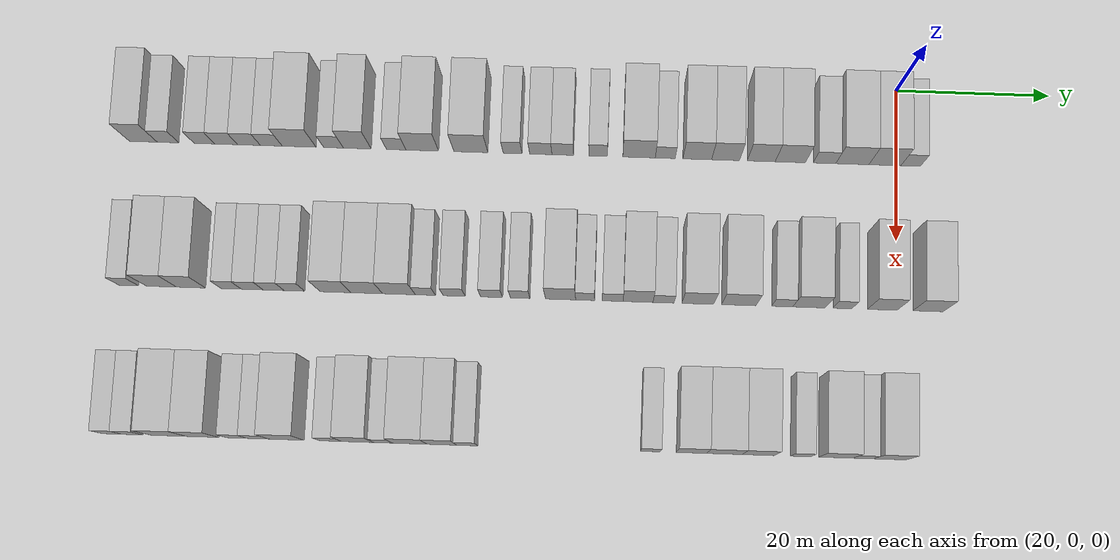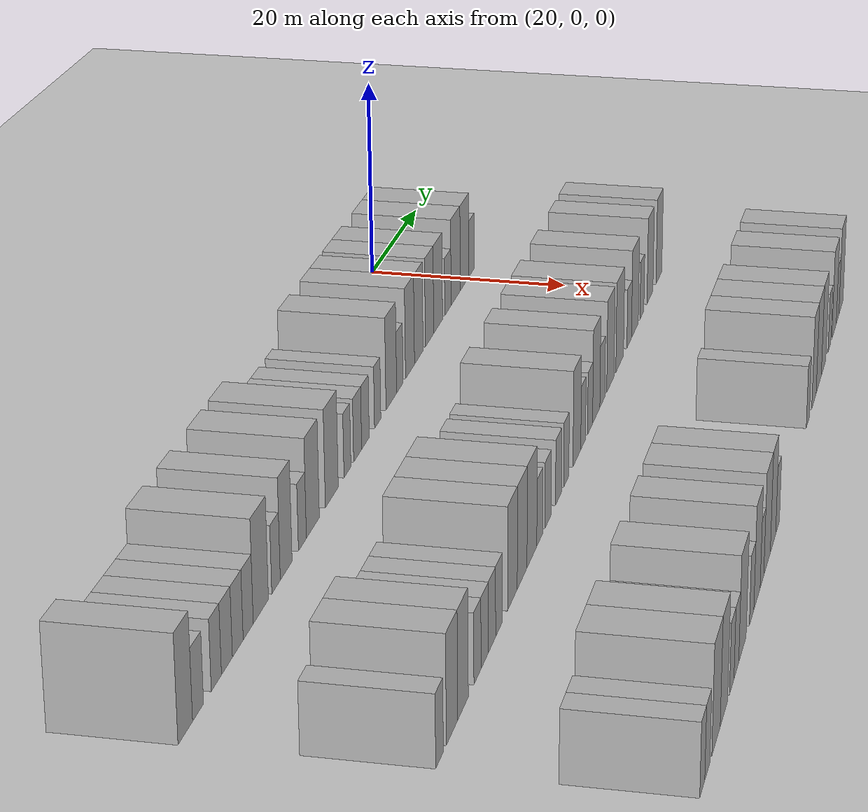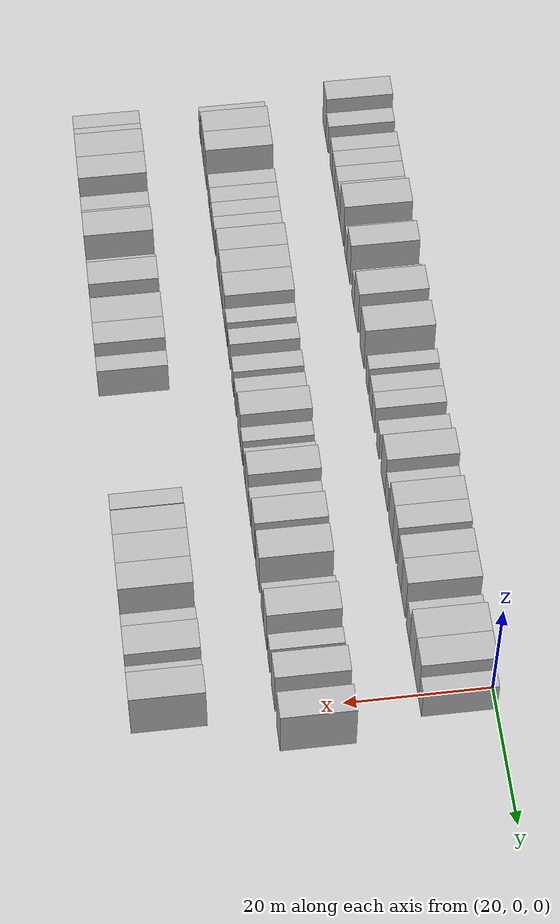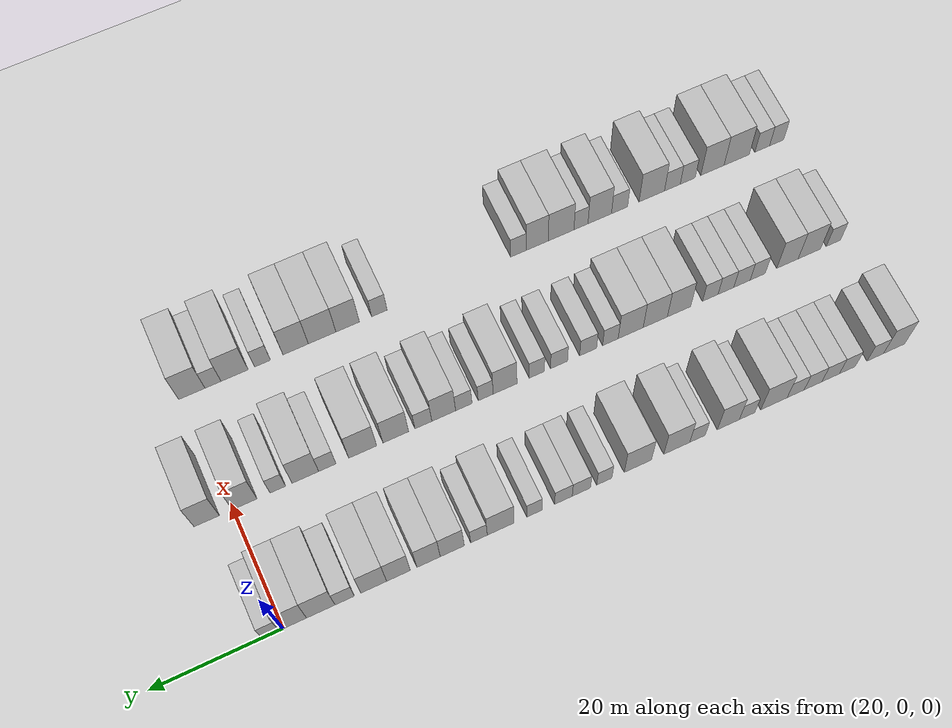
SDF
<sdf version="1.6">
 <world name="default">
  <include><name>ground_plane_1</name><uri>model://HANNAS_ground_plane</uri></include>
  <model name="building_68">
   <static>1</static>
   <pose>25.0000 -98.1795 0 0.000000 0.000000 0.000000</pose>
   <link name="link">
    <pose>0 0 4.50 0 0 0</pose>
    <collision name="collision"><geometry><box><size>10.0000 3.6378 9.0000</size></box></geometry></collision>
    <visual name="visual">
     <cast_shadows>0</cast_shadows>
     <geometry><box><size>10.0000 3.6378 9.0000</size></box></geometry>
     <material>
      <script>
       <uri>model://HANNAS_wall/materials/scripts</uri>
       <uri>model://HANNAS_wall/materials/textures</uri>
       <name>vrc/HANNAS_wall</name>
      </script>
     </material>
    </visual>
   </link>
  </model>
  <model name="building_69">
   <static>1</static>
   <pose>25.0000 -94.9597 0 0.000000 0.000000 0.000000</pose>
   <link name="link">
    <pose>0 0 3.00 0 0 0</pose>
    <collision name="collision"><geometry><box><size>10.0000 2.8019 6.0000</size></box></geometry></collision>
    <visual name="visual">
     <cast_shadows>0</cast_shadows>
     <geometry><box><size>10.0000 2.8019 6.0000</size></box></geometry>
     <material>
      <script>
       <uri>model://HANNAS_wall/materials/scripts</uri>
       <uri>model://HANNAS_wall/materials/textures</uri>
       <name>vrc/HANNAS_wall</name>
      </script>
     </material>
    </visual>
   </link>
  </model>
  <model name="building_70">
   <static>1</static>
   <pose>25.0000 -90.2027 0 0.000000 0.000000 0.000000</pose>
   <link name="link">
    <pose>0 0 3.00 0 0 0</pose>
    <collision name="collision"><geometry><box><size>10.0000 2.7120 6.0000</size></box></geometry></collision>
    <visual name="visual">
     <cast_shadows>0</cast_shadows>
     <geometry><box><size>10.0000 2.7120 6.0000</size></box></geometry>
     <material>
      <script>
       <uri>model://HANNAS_wall/materials/scripts</uri>
       <uri>model://HANNAS_wall/materials/textures</uri>
       <name>vrc/HANNAS_wall</name>
      </script>
     </material>
    </visual>
   </link>
  </model>
  <model name="building_71">
   <static>1</static>
   <pose>25.0000 -87.3622 0 0.000000 0.000000 0.000000</pose>
   <link name="link">
    <pose>0 0 3.00 0 0 0</pose>
    <collision name="collision"><geometry><box><size>10.0000 2.9691 6.0000</size></box></geometry></collision>
    <visual name="visual">
     <cast_shadows>0</cast_shadows>
     <geometry><box><size>10.0000 2.9691 6.0000</size></box></geometry>
     <material>
      <script>
       <uri>model://HANNAS_wall/materials/scripts</uri>
       <uri>model://HANNAS_wall/materials/textures</uri>
       <name>vrc/HANNAS_wall</name>
      </script>
     </material>
    </visual>
   </link>
  </model>
  <model name="building_72">
   <static>1</static>
   <pose>25.0000 -84.3851 0 0.000000 0.000000 0.000000</pose>
   <link name="link">
    <pose>0 0 3.00 0 0 0</pose>
    <collision name="collision"><geometry><box><size>10.0000 2.9850 6.0000</size></box></geometry></collision>
    <visual name="visual">
     <cast_shadows>0</cast_shadows>
     <geometry><box><size>10.0000 2.9850 6.0000</size></box></geometry>
     <material>
      <script>
       <uri>model://HANNAS_wall/materials/scripts</uri>
       <uri>model://HANNAS_wall/materials/textures</uri>
       <name>vrc/HANNAS_wall</name>
      </script>
     </material>
    </visual>
   </link>
  </model>
  <model name="building_73">
   <static>1</static>
   <pose>25.0000 -81.4628 0 0.000000 0.000000 0.000000</pose>
   <link name="link">
    <pose>0 0 3.00 0 0 0</pose>
    <collision name="collision"><geometry><box><size>10.0000 2.8596 6.0000</size></box></geometry></collision>
    <visual name="visual">
     <cast_shadows>0</cast_shadows>
     <geometry><box><size>10.0000 2.8596 6.0000</size></box></geometry>
     <material>
      <script>
       <uri>model://HANNAS_wall/materials/scripts</uri>
       <uri>model://HANNAS_wall/materials/textures</uri>
       <name>vrc/HANNAS_wall</name>
      </script>
     </material>
    </visual>
   </link>
  </model>
  <model name="building_74">
   <static>1</static>
   <pose>25.0000 -77.8253 0 0.000000 0.000000 0.000000</pose>
   <link name="link">
    <pose>0 0 4.50 0 0 0</pose>
    <collision name="collision"><geometry><box><size>10.0000 4.4153 9.0000</size></box></geometry></collision>
    <visual name="visual">
     <cast_shadows>0</cast_shadows>
     <geometry><box><size>10.0000 4.4153 9.0000</size></box></geometry>
     <material>
      <script>
       <uri>model://HANNAS_wall/materials/scripts</uri>
       <uri>model://HANNAS_wall/materials/textures</uri>
       <name>vrc/HANNAS_wall</name>
      </script>
     </material>
    </visual>
   </link>
  </model>
  <model name="building_75">
   <static>1</static>
   <pose>25.0000 -73.3336 0 0.000000 0.000000 0.000000</pose>
   <link name="link">
    <pose>0 0 3.00 0 0 0</pose>
    <collision name="collision"><geometry><box><size>10.0000 2.5679 6.0000</size></box></geometry></collision>
    <visual name="visual">
     <cast_shadows>0</cast_shadows>
     <geometry><box><size>10.0000 2.5679 6.0000</size></box></geometry>
     <material>
      <script>
       <uri>model://HANNAS_wall/materials/scripts</uri>
       <uri>model://HANNAS_wall/materials/textures</uri>
       <name>vrc/HANNAS_wall</name>
      </script>
     </material>
    </visual>
   </link>
  </model>
  <model name="building_76">
   <static>1</static>
   <pose>25.0000 -70.2346 0 0.000000 0.000000 0.000000</pose>
   <link name="link">
    <pose>0 0 4.50 0 0 0</pose>
    <collision name="collision"><geometry><box><size>10.0000 3.6302 9.0000</size></box></geometry></collision>
    <visual name="visual">
     <cast_shadows>0</cast_shadows>
     <geometry><box><size>10.0000 3.6302 9.0000</size></box></geometry>
     <material>
      <script>
       <uri>model://HANNAS_wall/materials/scripts</uri>
       <uri>model://HANNAS_wall/materials/textures</uri>
       <name>vrc/HANNAS_wall</name>
      </script>
     </material>
    </visual>
   </link>
  </model>
  <model name="building_77">
   <static>1</static>
   <pose>25.0000 -65.1470 0 0.000000 0.000000 0.000000</pose>
   <link name="link">
    <pose>0 0 3.00 0 0 0</pose>
    <collision name="collision"><geometry><box><size>10.0000 2.5449 6.0000</size></box></geometry></collision>
    <visual name="visual">
     <cast_shadows>0</cast_shadows>
     <geometry><box><size>10.0000 2.5449 6.0000</size></box></geometry>
     <material>
      <script>
       <uri>model://HANNAS_wall/materials/scripts</uri>
       <uri>model://HANNAS_wall/materials/textures</uri>
       <name>vrc/HANNAS_wall</name>
      </script>
     </material>
    </visual>
   </link>
  </model>
  <model name="building_78">
   <static>1</static>
   <pose>25.0000 -61.7472 0 0.000000 0.000000 0.000000</pose>
   <link name="link">
    <pose>0 0 4.50 0 0 0</pose>
    <collision name="collision"><geometry><box><size>10.0000 4.2547 9.0000</size></box></geometry></collision>
    <visual name="visual">
     <cast_shadows>0</cast_shadows>
     <geometry><box><size>10.0000 4.2547 9.0000</size></box></geometry>
     <material>
      <script>
       <uri>model://HANNAS_wall/materials/scripts</uri>
       <uri>model://HANNAS_wall/materials/textures</uri>
       <name>vrc/HANNAS_wall</name>
      </script>
     </material>
    </visual>
   </link>
  </model>
  <model name="building_79">
   <static>1</static>
   <pose>25.0000 -55.4081 0 0.000000 0.000000 0.000000</pose>
   <link name="link">
    <pose>0 0 4.50 0 0 0</pose>
    <collision name="collision"><geometry><box><size>10.0000 4.4236 9.0000</size></box></geometry></collision>
    <visual name="visual">
     <cast_shadows>0</cast_shadows>
     <geometry><box><size>10.0000 4.4236 9.0000</size></box></geometry>
     <material>
      <script>
       <uri>model://HANNAS_wall/materials/scripts</uri>
       <uri>model://HANNAS_wall/materials/textures</uri>
       <name>vrc/HANNAS_wall</name>
      </script>
     </material>
    </visual>
   </link>
  </model>
  <model name="building_80">
   <static>1</static>
   <pose>25.0000 -49.9719 0 0.000000 0.000000 0.000000</pose>
   <link name="link">
    <pose>0 0 3.00 0 0 0</pose>
    <collision name="collision"><geometry><box><size>10.0000 2.4488 6.0000</size></box></geometry></collision>
    <visual name="visual">
     <cast_shadows>0</cast_shadows>
     <geometry><box><size>10.0000 2.4488 6.0000</size></box></geometry>
     <material>
      <script>
       <uri>model://HANNAS_wall/materials/scripts</uri>
       <uri>model://HANNAS_wall/materials/textures</uri>
       <name>vrc/HANNAS_wall</name>
      </script>
     </material>
    </visual>
   </link>
  </model>
  <model name="building_81">
   <static>1</static>
   <pose>25.0000 -46.2930 0 0.000000 0.000000 0.000000</pose>
   <link name="link">
    <pose>0 0 3.00 0 0 0</pose>
    <collision name="collision"><geometry><box><size>10.0000 2.9089 6.0000</size></box></geometry></collision>
    <visual name="visual">
     <cast_shadows>0</cast_shadows>
     <geometry><box><size>10.0000 2.9089 6.0000</size></box></geometry>
     <material>
      <script>
       <uri>model://HANNAS_wall/materials/scripts</uri>
       <uri>model://HANNAS_wall/materials/textures</uri>
       <name>vrc/HANNAS_wall</name>
      </script>
     </material>
    </visual>
   </link>
  </model>
  <model name="building_82">
   <static>1</static>
   <pose>25.0000 -43.4327 0 0.000000 0.000000 0.000000</pose>
   <link name="link">
    <pose>0 0 3.00 0 0 0</pose>
    <collision name="collision"><geometry><box><size>10.0000 2.8117 6.0000</size></box></geometry></collision>
    <visual name="visual">
     <cast_shadows>0</cast_shadows>
     <geometry><box><size>10.0000 2.8117 6.0000</size></box></geometry>
     <material>
      <script>
       <uri>model://HANNAS_wall/materials/scripts</uri>
       <uri>model://HANNAS_wall/materials/textures</uri>
       <name>vrc/HANNAS_wall</name>
      </script>
     </material>
    </visual>
   </link>
  </model>
  <model name="building_83">
   <static>1</static>
   <pose>25.0000 -38.8175 0 0.000000 0.000000 0.000000</pose>
   <link name="link">
    <pose>0 0 3.00 0 0 0</pose>
    <collision name="collision"><geometry><box><size>10.0000 2.4189 6.0000</size></box></geometry></collision>
    <visual name="visual">
     <cast_shadows>0</cast_shadows>
     <geometry><box><size>10.0000 2.4189 6.0000</size></box></geometry>
     <material>
      <script>
       <uri>model://HANNAS_wall/materials/scripts</uri>
       <uri>model://HANNAS_wall/materials/textures</uri>
       <name>vrc/HANNAS_wall</name>
      </script>
     </material>
    </visual>
   </link>
  </model>
  <model name="building_84">
   <static>1</static>
   <pose>25.0000 -33.4978 0 0.000000 0.000000 0.000000</pose>
   <link name="link">
    <pose>0 0 4.50 0 0 0</pose>
    <collision name="collision"><geometry><box><size>10.0000 4.2204 9.0000</size></box></geometry></collision>
    <visual name="visual">
     <cast_shadows>0</cast_shadows>
     <geometry><box><size>10.0000 4.2204 9.0000</size></box></geometry>
     <material>
      <script>
       <uri>model://HANNAS_wall/materials/scripts</uri>
       <uri>model://HANNAS_wall/materials/textures</uri>
       <name>vrc/HANNAS_wall</name>
      </script>
     </material>
    </visual>
   </link>
  </model>
  <model name="building_85">
   <static>1</static>
   <pose>25.0000 -30.0917 0 0.000000 0.000000 0.000000</pose>
   <link name="link">
    <pose>0 0 3.00 0 0 0</pose>
    <collision name="collision"><geometry><box><size>10.0000 2.5917 6.0000</size></box></geometry></collision>
    <visual name="visual">
     <cast_shadows>0</cast_shadows>
     <geometry><box><size>10.0000 2.5917 6.0000</size></box></geometry>
     <material>
      <script>
       <uri>model://HANNAS_wall/materials/scripts</uri>
       <uri>model://HANNAS_wall/materials/textures</uri>
       <name>vrc/HANNAS_wall</name>
      </script>
     </material>
    </visual>
   </link>
  </model>
  <model name="building_86">
   <static>1</static>
   <pose>25.0000 -25.9251 0 0.000000 0.000000 0.000000</pose>
   <link name="link">
    <pose>0 0 4.50 0 0 0</pose>
    <collision name="collision"><geometry><box><size>10.0000 3.7415 9.0000</size></box></geometry></collision>
    <visual name="visual">
     <cast_shadows>0</cast_shadows>
     <geometry><box><size>10.0000 3.7415 9.0000</size></box></geometry>
     <material>
      <script>
       <uri>model://HANNAS_wall/materials/scripts</uri>
       <uri>model://HANNAS_wall/materials/textures</uri>
       <name>vrc/HANNAS_wall</name>
      </script>
     </material>
    </visual>
   </link>
  </model>
  <model name="building_87">
   <static>1</static>
   <pose>25.0000 -22.2353 0 0.000000 0.000000 0.000000</pose>
   <link name="link">
    <pose>0 0 4.50 0 0 0</pose>
    <collision name="collision"><geometry><box><size>10.0000 3.6381 9.0000</size></box></geometry></collision>
    <visual name="visual">
     <cast_shadows>0</cast_shadows>
     <geometry><box><size>10.0000 3.6381 9.0000</size></box></geometry>
     <material>
      <script>
       <uri>model://HANNAS_wall/materials/scripts</uri>
       <uri>model://HANNAS_wall/materials/textures</uri>
       <name>vrc/HANNAS_wall</name>
      </script>
     </material>
    </visual>
   </link>
  </model>
  <model name="building_88">
   <static>1</static>
   <pose>25.0000 -17.5931 0 0.000000 0.000000 0.000000</pose>
   <link name="link">
    <pose>0 0 4.50 0 0 0</pose>
    <collision name="collision"><geometry><box><size>10.0000 3.6464 9.0000</size></box></geometry></collision>
    <visual name="visual">
     <cast_shadows>0</cast_shadows>
     <geometry><box><size>10.0000 3.6464 9.0000</size></box></geometry>
     <material>
      <script>
       <uri>model://HANNAS_wall/materials/scripts</uri>
       <uri>model://HANNAS_wall/materials/textures</uri>
       <name>vrc/HANNAS_wall</name>
      </script>
     </material>
    </visual>
   </link>
  </model>
  <model name="building_89">
   <static>1</static>
   <pose>25.0000 -13.7994 0 0.000000 0.000000 0.000000</pose>
   <link name="link">
    <pose>0 0 4.50 0 0 0</pose>
    <collision name="collision"><geometry><box><size>10.0000 3.9409 9.0000</size></box></geometry></collision>
    <visual name="visual">
     <cast_shadows>0</cast_shadows>
     <geometry><box><size>10.0000 3.9409 9.0000</size></box></geometry>
     <material>
      <script>
       <uri>model://HANNAS_wall/materials/scripts</uri>
       <uri>model://HANNAS_wall/materials/textures</uri>
       <name>vrc/HANNAS_wall</name>
      </script>
     </material>
    </visual>
   </link>
  </model>
  <model name="building_90">
   <static>1</static>
   <pose>25.0000 -9.3594 0 0.000000 0.000000 0.000000</pose>
   <link name="link">
    <pose>0 0 3.00 0 0 0</pose>
    <collision name="collision"><geometry><box><size>10.0000 2.9392 6.0000</size></box></geometry></collision>
    <visual name="visual">
     <cast_shadows>0</cast_shadows>
     <geometry><box><size>10.0000 2.9392 6.0000</size></box></geometry>
     <material>
      <script>
       <uri>model://HANNAS_wall/materials/scripts</uri>
       <uri>model://HANNAS_wall/materials/textures</uri>
       <name>vrc/HANNAS_wall</name>
      </script>
     </material>
    </visual>
   </link>
  </model>
  <model name="building_91">
   <static>1</static>
   <pose>25.0000 -5.7333 0 0.000000 0.000000 0.000000</pose>
   <link name="link">
    <pose>0 0 4.50 0 0 0</pose>
    <collision name="collision"><geometry><box><size>10.0000 4.3129 9.0000</size></box></geometry></collision>
    <visual name="visual">
     <cast_shadows>0</cast_shadows>
     <geometry><box><size>10.0000 4.3129 9.0000</size></box></geometry>
     <material>
      <script>
       <uri>model://HANNAS_wall/materials/scripts</uri>
       <uri>model://HANNAS_wall/materials/textures</uri>
       <name>vrc/HANNAS_wall</name>
      </script>
     </material>
    </visual>
   </link>
  </model>
  <model name="building_92">
   <static>1</static>
   <pose>25.0000 -1.4949 0 0.000000 0.000000 0.000000</pose>
   <link name="link">
    <pose>0 0 4.50 0 0 0</pose>
    <collision name="collision"><geometry><box><size>10.0000 4.1638 9.0000</size></box></geometry></collision>
    <visual name="visual">
     <cast_shadows>0</cast_shadows>
     <geometry><box><size>10.0000 4.1638 9.0000</size></box></geometry>
     <material>
      <script>
       <uri>model://HANNAS_wall/materials/scripts</uri>
       <uri>model://HANNAS_wall/materials/textures</uri>
       <name>vrc/HANNAS_wall</name>
      </script>
     </material>
    </visual>
   </link>
  </model>
  <model name="building_93">
   <static>1</static>
   <pose>25.0000 1.8575 0 0.000000 0.000000 0.000000</pose>
   <link name="link">
    <pose>0 0 3.00 0 0 0</pose>
    <collision name="collision"><geometry><box><size>10.0000 2.5411 6.0000</size></box></geometry></collision>
    <visual name="visual">
     <cast_shadows>0</cast_shadows>
     <geometry><box><size>10.0000 2.5411 6.0000</size></box></geometry>
     <material>
      <script>
       <uri>model://HANNAS_wall/materials/scripts</uri>
       <uri>model://HANNAS_wall/materials/textures</uri>
       <name>vrc/HANNAS_wall</name>
      </script>
     </material>
    </visual>
   </link>
  </model>
  <model name="building_248">
   <static>1</static>
   <pose>44.0000 -98.4805 0 0.000000 0.000000 0.000000</pose>
   <link name="link">
    <pose>0 0 3.00 0 0 0</pose>
    <collision name="collision"><geometry><box><size>10.0000 2.5162 6.0000</size></box></geometry></collision>
    <visual name="visual">
     <cast_shadows>0</cast_shadows>
     <geometry><box><size>10.0000 2.5162 6.0000</size></box></geometry>
     <material>
      <script>
       <uri>model://HANNAS_wall/materials/scripts</uri>
       <uri>model://HANNAS_wall/materials/textures</uri>
       <name>vrc/HANNAS_wall</name>
      </script>
     </material>
    </visual>
   </link>
  </model>
  <model name="building_249">
   <static>1</static>
   <pose>44.0000 -94.2760 0 0.000000 0.000000 0.000000</pose>
   <link name="link">
    <pose>0 0 4.50 0 0 0</pose>
    <collision name="collision"><geometry><box><size>10.0000 3.8926 9.0000</size></box></geometry></collision>
    <visual name="visual">
     <cast_shadows>0</cast_shadows>
     <geometry><box><size>10.0000 3.8926 9.0000</size></box></geometry>
     <material>
      <script>
       <uri>model://HANNAS_wall/materials/scripts</uri>
       <uri>model://HANNAS_wall/materials/textures</uri>
       <name>vrc/HANNAS_wall</name>
      </script>
     </material>
    </visual>
   </link>
  </model>
  <model name="building_250">
   <static>1</static>
   <pose>44.0000 -90.4767 0 0.000000 0.000000 0.000000</pose>
   <link name="link">
    <pose>0 0 4.50 0 0 0</pose>
    <collision name="collision"><geometry><box><size>10.0000 3.7061 9.0000</size></box></geometry></collision>
    <visual name="visual">
     <cast_shadows>0</cast_shadows>
     <geometry><box><size>10.0000 3.7061 9.0000</size></box></geometry>
     <material>
      <script>
       <uri>model://HANNAS_wall/materials/scripts</uri>
       <uri>model://HANNAS_wall/materials/textures</uri>
       <name>vrc/HANNAS_wall</name>
      </script>
     </material>
    </visual>
   </link>
  </model>
  <model name="building_251">
   <static>1</static>
   <pose>44.0000 -85.3222 0 0.000000 0.000000 0.000000</pose>
   <link name="link">
    <pose>0 0 3.00 0 0 0</pose>
    <collision name="collision"><geometry><box><size>10.0000 2.6028 6.0000</size></box></geometry></collision>
    <visual name="visual">
     <cast_shadows>0</cast_shadows>
     <geometry><box><size>10.0000 2.6028 6.0000</size></box></geometry>
     <material>
      <script>
       <uri>model://HANNAS_wall/materials/scripts</uri>
       <uri>model://HANNAS_wall/materials/textures</uri>
       <name>vrc/HANNAS_wall</name>
      </script>
     </material>
    </visual>
   </link>
  </model>
  <model name="building_252">
   <static>1</static>
   <pose>44.0000 -82.6232 0 0.000000 0.000000 0.000000</pose>
   <link name="link">
    <pose>0 0 3.00 0 0 0</pose>
    <collision name="collision"><geometry><box><size>10.0000 2.7951 6.0000</size></box></geometry></collision>
    <visual name="visual">
     <cast_shadows>0</cast_shadows>
     <geometry><box><size>10.0000 2.7951 6.0000</size></box></geometry>
     <material>
      <script>
       <uri>model://HANNAS_wall/materials/scripts</uri>
       <uri>model://HANNAS_wall/materials/textures</uri>
       <name>vrc/HANNAS_wall</name>
      </script>
     </material>
    </visual>
   </link>
  </model>
  <model name="building_253">
   <static>1</static>
   <pose>44.0000 -79.8753 0 0.000000 0.000000 0.000000</pose>
   <link name="link">
    <pose>0 0 3.00 0 0 0</pose>
    <collision name="collision"><geometry><box><size>10.0000 2.7007 6.0000</size></box></geometry></collision>
    <visual name="visual">
     <cast_shadows>0</cast_shadows>
     <geometry><box><size>10.0000 2.7007 6.0000</size></box></geometry>
     <material>
      <script>
       <uri>model://HANNAS_wall/materials/scripts</uri>
       <uri>model://HANNAS_wall/materials/textures</uri>
       <name>vrc/HANNAS_wall</name>
      </script>
     </material>
    </visual>
   </link>
  </model>
  <model name="building_254">
   <static>1</static>
   <pose>44.0000 -77.2009 0 0.000000 0.000000 0.000000</pose>
   <link name="link">
    <pose>0 0 3.00 0 0 0</pose>
    <collision name="collision"><geometry><box><size>10.0000 2.6481 6.0000</size></box></geometry></collision>
    <visual name="visual">
     <cast_shadows>0</cast_shadows>
     <geometry><box><size>10.0000 2.6481 6.0000</size></box></geometry>
     <material>
      <script>
       <uri>model://HANNAS_wall/materials/scripts</uri>
       <uri>model://HANNAS_wall/materials/textures</uri>
       <name>vrc/HANNAS_wall</name>
      </script>
     </material>
    </visual>
   </link>
  </model>
  <model name="building_255">
   <static>1</static>
   <pose>44.0000 -71.8990 0 0.000000 0.000000 0.000000</pose>
   <link name="link">
    <pose>0 0 4.50 0 0 0</pose>
    <collision name="collision"><geometry><box><size>10.0000 3.9558 9.0000</size></box></geometry></collision>
    <visual name="visual">
     <cast_shadows>0</cast_shadows>
     <geometry><box><size>10.0000 3.9558 9.0000</size></box></geometry>
     <material>
      <script>
       <uri>model://HANNAS_wall/materials/scripts</uri>
       <uri>model://HANNAS_wall/materials/textures</uri>
       <name>vrc/HANNAS_wall</name>
      </script>
     </material>
    </visual>
   </link>
  </model>
  <model name="building_256">
   <static>1</static>
   <pose>44.0000 -67.8866 0 0.000000 0.000000 0.000000</pose>
   <link name="link">
    <pose>0 0 4.50 0 0 0</pose>
    <collision name="collision"><geometry><box><size>10.0000 4.0691 9.0000</size></box></geometry></collision>
    <visual name="visual">
     <cast_shadows>0</cast_shadows>
     <geometry><box><size>10.0000 4.0691 9.0000</size></box></geometry>
     <material>
      <script>
       <uri>model://HANNAS_wall/materials/scripts</uri>
       <uri>model://HANNAS_wall/materials/textures</uri>
       <name>vrc/HANNAS_wall</name>
      </script>
     </material>
    </visual>
   </link>
  </model>
  <model name="building_257">
   <static>1</static>
   <pose>44.0000 -63.7514 0 0.000000 0.000000 0.000000</pose>
   <link name="link">
    <pose>0 0 4.50 0 0 0</pose>
    <collision name="collision"><geometry><box><size>10.0000 4.2013 9.0000</size></box></geometry></collision>
    <visual name="visual">
     <cast_shadows>0</cast_shadows>
     <geometry><box><size>10.0000 4.2013 9.0000</size></box></geometry>
     <material>
      <script>
       <uri>model://HANNAS_wall/materials/scripts</uri>
       <uri>model://HANNAS_wall/materials/textures</uri>
       <name>vrc/HANNAS_wall</name>
      </script>
     </material>
    </visual>
   </link>
  </model>
  <model name="building_258">
   <static>1</static>
   <pose>44.0000 -60.3575 0 0.000000 0.000000 0.000000</pose>
   <link name="link">
    <pose>0 0 3.00 0 0 0</pose>
    <collision name="collision"><geometry><box><size>10.0000 2.5864 6.0000</size></box></geometry></collision>
    <visual name="visual">
     <cast_shadows>0</cast_shadows>
     <geometry><box><size>10.0000 2.5864 6.0000</size></box></geometry>
     <material>
      <script>
       <uri>model://HANNAS_wall/materials/scripts</uri>
       <uri>model://HANNAS_wall/materials/textures</uri>
       <name>vrc/HANNAS_wall</name>
      </script>
     </material>
    </visual>
   </link>
  </model>
  <model name="building_259">
   <static>1</static>
   <pose>44.0000 -56.6577 0 0.000000 0.000000 0.000000</pose>
   <link name="link">
    <pose>0 0 3.00 0 0 0</pose>
    <collision name="collision"><geometry><box><size>10.0000 2.8132 6.0000</size></box></geometry></collision>
    <visual name="visual">
     <cast_shadows>0</cast_shadows>
     <geometry><box><size>10.0000 2.8132 6.0000</size></box></geometry>
     <material>
      <script>
       <uri>model://HANNAS_wall/materials/scripts</uri>
       <uri>model://HANNAS_wall/materials/textures</uri>
       <name>vrc/HANNAS_wall</name>
      </script>
     </material>
    </visual>
   </link>
  </model>
  <model name="building_260">
   <static>1</static>
   <pose>44.0000 -51.8497 0 0.000000 0.000000 0.000000</pose>
   <link name="link">
    <pose>0 0 3.00 0 0 0</pose>
    <collision name="collision"><geometry><box><size>10.0000 2.8027 6.0000</size></box></geometry></collision>
    <visual name="visual">
     <cast_shadows>0</cast_shadows>
     <geometry><box><size>10.0000 2.8027 6.0000</size></box></geometry>
     <material>
      <script>
       <uri>model://HANNAS_wall/materials/scripts</uri>
       <uri>model://HANNAS_wall/materials/textures</uri>
       <name>vrc/HANNAS_wall</name>
      </script>
     </material>
    </visual>
   </link>
  </model>
  <model name="building_261">
   <static>1</static>
   <pose>44.0000 -48.2028 0 0.000000 0.000000 0.000000</pose>
   <link name="link">
    <pose>0 0 3.00 0 0 0</pose>
    <collision name="collision"><geometry><box><size>10.0000 2.4911 6.0000</size></box></geometry></collision>
    <visual name="visual">
     <cast_shadows>0</cast_shadows>
     <geometry><box><size>10.0000 2.4911 6.0000</size></box></geometry>
     <material>
      <script>
       <uri>model://HANNAS_wall/materials/scripts</uri>
       <uri>model://HANNAS_wall/materials/textures</uri>
       <name>vrc/HANNAS_wall</name>
      </script>
     </material>
    </visual>
   </link>
  </model>
  <model name="building_262">
   <static>1</static>
   <pose>44.0000 -43.0210 0 0.000000 0.000000 0.000000</pose>
   <link name="link">
    <pose>0 0 4.50 0 0 0</pose>
    <collision name="collision"><geometry><box><size>10.0000 3.8725 9.0000</size></box></geometry></collision>
    <visual name="visual">
     <cast_shadows>0</cast_shadows>
     <geometry><box><size>10.0000 3.8725 9.0000</size></box></geometry>
     <material>
      <script>
       <uri>model://HANNAS_wall/materials/scripts</uri>
       <uri>model://HANNAS_wall/materials/textures</uri>
       <name>vrc/HANNAS_wall</name>
      </script>
     </material>
    </visual>
   </link>
  </model>
  <model name="building_263">
   <static>1</static>
   <pose>44.0000 -39.8704 0 0.000000 0.000000 0.000000</pose>
   <link name="link">
    <pose>0 0 3.00 0 0 0</pose>
    <collision name="collision"><geometry><box><size>10.0000 2.4286 6.0000</size></box></geometry></collision>
    <visual name="visual">
     <cast_shadows>0</cast_shadows>
     <geometry><box><size>10.0000 2.4286 6.0000</size></box></geometry>
     <material>
      <script>
       <uri>model://HANNAS_wall/materials/scripts</uri>
       <uri>model://HANNAS_wall/materials/textures</uri>
       <name>vrc/HANNAS_wall</name>
      </script>
     </material>
    </visual>
   </link>
  </model>
  <model name="building_264">
   <static>1</static>
   <pose>44.0000 -36.3331 0 0.000000 0.000000 0.000000</pose>
   <link name="link">
    <pose>0 0 3.00 0 0 0</pose>
    <collision name="collision"><geometry><box><size>10.0000 2.6460 6.0000</size></box></geometry></collision>
    <visual name="visual">
     <cast_shadows>0</cast_shadows>
     <geometry><box><size>10.0000 2.6460 6.0000</size></box></geometry>
     <material>
      <script>
       <uri>model://HANNAS_wall/materials/scripts</uri>
       <uri>model://HANNAS_wall/materials/textures</uri>
       <name>vrc/HANNAS_wall</name>
      </script>
     </material>
    </visual>
   </link>
  </model>
  <model name="building_265">
   <static>1</static>
   <pose>44.0000 -33.0952 0 0.000000 0.000000 0.000000</pose>
   <link name="link">
    <pose>0 0 4.50 0 0 0</pose>
    <collision name="collision"><geometry><box><size>10.0000 3.8299 9.0000</size></box></geometry></collision>
    <visual name="visual">
     <cast_shadows>0</cast_shadows>
     <geometry><box><size>10.0000 3.8299 9.0000</size></box></geometry>
     <material>
      <script>
       <uri>model://HANNAS_wall/materials/scripts</uri>
       <uri>model://HANNAS_wall/materials/textures</uri>
       <name>vrc/HANNAS_wall</name>
      </script>
     </material>
    </visual>
   </link>
  </model>
  <model name="building_266">
   <static>1</static>
   <pose>44.0000 -29.8294 0 0.000000 0.000000 0.000000</pose>
   <link name="link">
    <pose>0 0 3.00 0 0 0</pose>
    <collision name="collision"><geometry><box><size>10.0000 2.7018 6.0000</size></box></geometry></collision>
    <visual name="visual">
     <cast_shadows>0</cast_shadows>
     <geometry><box><size>10.0000 2.7018 6.0000</size></box></geometry>
     <material>
      <script>
       <uri>model://HANNAS_wall/materials/scripts</uri>
       <uri>model://HANNAS_wall/materials/textures</uri>
       <name>vrc/HANNAS_wall</name>
      </script>
     </material>
    </visual>
   </link>
  </model>
  <model name="building_267">
   <static>1</static>
   <pose>44.0000 -25.4348 0 0.000000 0.000000 0.000000</pose>
   <link name="link">
    <pose>0 0 4.50 0 0 0</pose>
    <collision name="collision"><geometry><box><size>10.0000 4.0874 9.0000</size></box></geometry></collision>
    <visual name="visual">
     <cast_shadows>0</cast_shadows>
     <geometry><box><size>10.0000 4.0874 9.0000</size></box></geometry>
     <material>
      <script>
       <uri>model://HANNAS_wall/materials/scripts</uri>
       <uri>model://HANNAS_wall/materials/textures</uri>
       <name>vrc/HANNAS_wall</name>
      </script>
     </material>
    </visual>
   </link>
  </model>
  <model name="building_268">
   <static>1</static>
   <pose>44.0000 -20.1846 0 0.000000 0.000000 0.000000</pose>
   <link name="link">
    <pose>0 0 4.50 0 0 0</pose>
    <collision name="collision"><geometry><box><size>10.0000 4.4129 9.0000</size></box></geometry></collision>
    <visual name="visual">
     <cast_shadows>0</cast_shadows>
     <geometry><box><size>10.0000 4.4129 9.0000</size></box></geometry>
     <material>
      <script>
       <uri>model://HANNAS_wall/materials/scripts</uri>
       <uri>model://HANNAS_wall/materials/textures</uri>
       <name>vrc/HANNAS_wall</name>
      </script>
     </material>
    </visual>
   </link>
  </model>
  <model name="building_269">
   <static>1</static>
   <pose>44.0000 -14.6228 0 0.000000 0.000000 0.000000</pose>
   <link name="link">
    <pose>0 0 3.00 0 0 0</pose>
    <collision name="collision"><geometry><box><size>10.0000 2.7107 6.0000</size></box></geometry></collision>
    <visual name="visual">
     <cast_shadows>0</cast_shadows>
     <geometry><box><size>10.0000 2.7107 6.0000</size></box></geometry>
     <material>
      <script>
       <uri>model://HANNAS_wall/materials/scripts</uri>
       <uri>model://HANNAS_wall/materials/textures</uri>
       <name>vrc/HANNAS_wall</name>
      </script>
     </material>
    </visual>
   </link>
  </model>
  <model name="building_270">
   <static>1</static>
   <pose>44.0000 -11.1909 0 0.000000 0.000000 0.000000</pose>
   <link name="link">
    <pose>0 0 4.50 0 0 0</pose>
    <collision name="collision"><geometry><box><size>10.0000 4.1532 9.0000</size></box></geometry></collision>
    <visual name="visual">
     <cast_shadows>0</cast_shadows>
     <geometry><box><size>10.0000 4.1532 9.0000</size></box></geometry>
     <material>
      <script>
       <uri>model://HANNAS_wall/materials/scripts</uri>
       <uri>model://HANNAS_wall/materials/textures</uri>
       <name>vrc/HANNAS_wall</name>
      </script>
     </material>
    </visual>
   </link>
  </model>
  <model name="building_271">
   <static>1</static>
   <pose>44.0000 -6.8982 0 0.000000 0.000000 0.000000</pose>
   <link name="link">
    <pose>0 0 3.00 0 0 0</pose>
    <collision name="collision"><geometry><box><size>10.0000 2.4321 6.0000</size></box></geometry></collision>
    <visual name="visual">
     <cast_shadows>0</cast_shadows>
     <geometry><box><size>10.0000 2.4321 6.0000</size></box></geometry>
     <material>
      <script>
       <uri>model://HANNAS_wall/materials/scripts</uri>
       <uri>model://HANNAS_wall/materials/textures</uri>
       <name>vrc/HANNAS_wall</name>
      </script>
     </material>
    </visual>
   </link>
  </model>
  <model name="building_272">
   <static>1</static>
   <pose>44.0000 -1.7785 0 0.000000 0.000000 0.000000</pose>
   <link name="link">
    <pose>0 0 4.50 0 0 0</pose>
    <collision name="collision"><geometry><box><size>10.0000 3.8074 9.0000</size></box></geometry></collision>
    <visual name="visual">
     <cast_shadows>0</cast_shadows>
     <geometry><box><size>10.0000 3.8074 9.0000</size></box></geometry>
     <material>
      <script>
       <uri>model://HANNAS_wall/materials/scripts</uri>
       <uri>model://HANNAS_wall/materials/textures</uri>
       <name>vrc/HANNAS_wall</name>
      </script>
     </material>
    </visual>
   </link>
  </model>
  <model name="building_273">
   <static>1</static>
   <pose>44.0000 4.0592 0 0.000000 0.000000 0.000000</pose>
   <link name="link">
    <pose>0 0 4.50 0 0 0</pose>
    <collision name="collision"><geometry><box><size>10.0000 3.8681 9.0000</size></box></geometry></collision>
    <visual name="visual">
     <cast_shadows>0</cast_shadows>
     <geometry><box><size>10.0000 3.8681 9.0000</size></box></geometry>
     <material>
      <script>
       <uri>model://HANNAS_wall/materials/scripts</uri>
       <uri>model://HANNAS_wall/materials/textures</uri>
       <name>vrc/HANNAS_wall</name>
      </script>
     </material>
    </visual>
   </link>
  </model>
  <model name="building_416">
   <static>1</static>
   <pose>63.0000 -98.9099 0 0.000000 0.000000 0.000000</pose>
   <link name="link">
    <pose>0 0 3.00 0 0 0</pose>
    <collision name="collision"><geometry><box><size>10.0000 2.5161 6.0000</size></box></geometry></collision>
    <visual name="visual">
     <cast_shadows>0</cast_shadows>
     <geometry><box><size>10.0000 2.5161 6.0000</size></box></geometry>
     <material>
      <script>
       <uri>model://HANNAS_wall/materials/scripts</uri>
       <uri>model://HANNAS_wall/materials/textures</uri>
       <name>vrc/HANNAS_wall</name>
      </script>
     </material>
    </visual>
   </link>
  </model>
  <model name="building_417">
   <static>1</static>
   <pose>63.0000 -96.3481 0 0.000000 0.000000 0.000000</pose>
   <link name="link">
    <pose>0 0 3.00 0 0 0</pose>
    <collision name="collision"><geometry><box><size>10.0000 2.6074 6.0000</size></box></geometry></collision>
    <visual name="visual">
     <cast_shadows>0</cast_shadows>
     <geometry><box><size>10.0000 2.6074 6.0000</size></box></geometry>
     <material>
      <script>
       <uri>model://HANNAS_wall/materials/scripts</uri>
       <uri>model://HANNAS_wall/materials/textures</uri>
       <name>vrc/HANNAS_wall</name>
      </script>
     </material>
    </visual>
   </link>
  </model>
  <model name="building_418">
   <static>1</static>
   <pose>63.0000 -91.8166 0 0.000000 0.000000 0.000000</pose>
   <link name="link">
    <pose>0 0 4.50 0 0 0</pose>
    <collision name="collision"><geometry><box><size>10.0000 4.4556 9.0000</size></box></geometry></collision>
    <visual name="visual">
     <cast_shadows>0</cast_shadows>
     <geometry><box><size>10.0000 4.4556 9.0000</size></box></geometry>
     <material>
      <script>
       <uri>model://HANNAS_wall/materials/scripts</uri>
       <uri>model://HANNAS_wall/materials/textures</uri>
       <name>vrc/HANNAS_wall</name>
      </script>
     </material>
    </visual>
   </link>
  </model>
  <model name="building_419">
   <static>1</static>
   <pose>63.0000 -87.5421 0 0.000000 0.000000 0.000000</pose>
   <link name="link">
    <pose>0 0 4.50 0 0 0</pose>
    <collision name="collision"><geometry><box><size>10.0000 4.0933 9.0000</size></box></geometry></collision>
    <visual name="visual">
     <cast_shadows>0</cast_shadows>
     <geometry><box><size>10.0000 4.0933 9.0000</size></box></geometry>
     <material>
      <script>
       <uri>model://HANNAS_wall/materials/scripts</uri>
       <uri>model://HANNAS_wall/materials/textures</uri>
       <name>vrc/HANNAS_wall</name>
      </script>
     </material>
    </visual>
   </link>
  </model>
  <model name="building_420">
   <static>1</static>
   <pose>63.0000 -83.1915 0 0.000000 0.000000 0.000000</pose>
   <link name="link">
    <pose>0 0 3.00 0 0 0</pose>
    <collision name="collision"><geometry><box><size>10.0000 2.6080 6.0000</size></box></geometry></collision>
    <visual name="visual">
     <cast_shadows>0</cast_shadows>
     <geometry><box><size>10.0000 2.6080 6.0000</size></box></geometry>
     <material>
      <script>
       <uri>model://HANNAS_wall/materials/scripts</uri>
       <uri>model://HANNAS_wall/materials/textures</uri>
       <name>vrc/HANNAS_wall</name>
      </script>
     </material>
    </visual>
   </link>
  </model>
  <model name="building_421">
   <static>1</static>
   <pose>63.0000 -80.5084 0 0.000000 0.000000 0.000000</pose>
   <link name="link">
    <pose>0 0 3.00 0 0 0</pose>
    <collision name="collision"><geometry><box><size>10.0000 2.7582 6.0000</size></box></geometry></collision>
    <visual name="visual">
     <cast_shadows>0</cast_shadows>
     <geometry><box><size>10.0000 2.7582 6.0000</size></box></geometry>
     <material>
      <script>
       <uri>model://HANNAS_wall/materials/scripts</uri>
       <uri>model://HANNAS_wall/materials/textures</uri>
       <name>vrc/HANNAS_wall</name>
      </script>
     </material>
    </visual>
   </link>
  </model>
  <model name="building_422">
   <static>1</static>
   <pose>63.0000 -76.9272 0 0.000000 0.000000 0.000000</pose>
   <link name="link">
    <pose>0 0 4.50 0 0 0</pose>
    <collision name="collision"><geometry><box><size>10.0000 4.4040 9.0000</size></box></geometry></collision>
    <visual name="visual">
     <cast_shadows>0</cast_shadows>
     <geometry><box><size>10.0000 4.4040 9.0000</size></box></geometry>
     <material>
      <script>
       <uri>model://HANNAS_wall/materials/scripts</uri>
       <uri>model://HANNAS_wall/materials/textures</uri>
       <name>vrc/HANNAS_wall</name>
      </script>
     </material>
    </visual>
   </link>
  </model>
  <model name="building_423">
   <static>1</static>
   <pose>63.0000 -71.3343 0 0.000000 0.000000 0.000000</pose>
   <link name="link">
    <pose>0 0 3.00 0 0 0</pose>
    <collision name="collision"><geometry><box><size>10.0000 2.7818 6.0000</size></box></geometry></collision>
    <visual name="visual">
     <cast_shadows>0</cast_shadows>
     <geometry><box><size>10.0000 2.7818 6.0000</size></box></geometry>
     <material>
      <script>
       <uri>model://HANNAS_wall/materials/scripts</uri>
       <uri>model://HANNAS_wall/materials/textures</uri>
       <name>vrc/HANNAS_wall</name>
      </script>
     </material>
    </visual>
   </link>
  </model>
  <model name="building_424">
   <static>1</static>
   <pose>63.0000 -67.9296 0 0.000000 0.000000 0.000000</pose>
   <link name="link">
    <pose>0 0 4.50 0 0 0</pose>
    <collision name="collision"><geometry><box><size>10.0000 4.0277 9.0000</size></box></geometry></collision>
    <visual name="visual">
     <cast_shadows>0</cast_shadows>
     <geometry><box><size>10.0000 4.0277 9.0000</size></box></geometry>
     <material>
      <script>
       <uri>model://HANNAS_wall/materials/scripts</uri>
       <uri>model://HANNAS_wall/materials/textures</uri>
       <name>vrc/HANNAS_wall</name>
      </script>
     </material>
    </visual>
   </link>
  </model>
  <model name="building_425">
   <static>1</static>
   <pose>63.0000 -64.7150 0 0.000000 0.000000 0.000000</pose>
   <link name="link">
    <pose>0 0 3.00 0 0 0</pose>
    <collision name="collision"><geometry><box><size>10.0000 2.4014 6.0000</size></box></geometry></collision>
    <visual name="visual">
     <cast_shadows>0</cast_shadows>
     <geometry><box><size>10.0000 2.4014 6.0000</size></box></geometry>
     <material>
      <script>
       <uri>model://HANNAS_wall/materials/scripts</uri>
       <uri>model://HANNAS_wall/materials/textures</uri>
       <name>vrc/HANNAS_wall</name>
      </script>
     </material>
    </visual>
   </link>
  </model>
  <model name="building_426">
   <static>1</static>
   <pose>63.0000 -61.3264 0 0.000000 0.000000 0.000000</pose>
   <link name="link">
    <pose>0 0 4.50 0 0 0</pose>
    <collision name="collision"><geometry><box><size>10.0000 4.3758 9.0000</size></box></geometry></collision>
    <visual name="visual">
     <cast_shadows>0</cast_shadows>
     <geometry><box><size>10.0000 4.3758 9.0000</size></box></geometry>
     <material>
      <script>
       <uri>model://HANNAS_wall/materials/scripts</uri>
       <uri>model://HANNAS_wall/materials/textures</uri>
       <name>vrc/HANNAS_wall</name>
      </script>
     </material>
    </visual>
   </link>
  </model>
  <model name="building_427">
   <static>1</static>
   <pose>63.0000 -57.2780 0 0.000000 0.000000 0.000000</pose>
   <link name="link">
    <pose>0 0 4.50 0 0 0</pose>
    <collision name="collision"><geometry><box><size>10.0000 3.7210 9.0000</size></box></geometry></collision>
    <visual name="visual">
     <cast_shadows>0</cast_shadows>
     <geometry><box><size>10.0000 3.7210 9.0000</size></box></geometry>
     <material>
      <script>
       <uri>model://HANNAS_wall/materials/scripts</uri>
       <uri>model://HANNAS_wall/materials/textures</uri>
       <name>vrc/HANNAS_wall</name>
      </script>
     </material>
    </visual>
   </link>
  </model>
  <model name="building_428">
   <static>1</static>
   <pose>63.0000 -54.0971 0 0.000000 0.000000 0.000000</pose>
   <link name="link">
    <pose>0 0 3.00 0 0 0</pose>
    <collision name="collision"><geometry><box><size>10.0000 2.6409 6.0000</size></box></geometry></collision>
    <visual name="visual">
     <cast_shadows>0</cast_shadows>
     <geometry><box><size>10.0000 2.6409 6.0000</size></box></geometry>
     <material>
      <script>
       <uri>model://HANNAS_wall/materials/scripts</uri>
       <uri>model://HANNAS_wall/materials/textures</uri>
       <name>vrc/HANNAS_wall</name>
      </script>
     </material>
    </visual>
   </link>
  </model>
  <model name="building_429">
   <static>1</static>
   <pose>63.0000 -30.9926 0 0.000000 0.000000 0.000000</pose>
   <link name="link">
    <pose>0 0 3.00 0 0 0</pose>
    <collision name="collision"><geometry><box><size>10.0000 2.5227 6.0000</size></box></geometry></collision>
    <visual name="visual">
     <cast_shadows>0</cast_shadows>
     <geometry><box><size>10.0000 2.5227 6.0000</size></box></geometry>
     <material>
      <script>
       <uri>model://HANNAS_wall/materials/scripts</uri>
       <uri>model://HANNAS_wall/materials/textures</uri>
       <name>vrc/HANNAS_wall</name>
      </script>
     </material>
    </visual>
   </link>
  </model>
  <model name="building_430">
   <static>1</static>
   <pose>63.0000 -25.8225 0 0.000000 0.000000 0.000000</pose>
   <link name="link">
    <pose>0 0 4.50 0 0 0</pose>
    <collision name="collision"><geometry><box><size>10.0000 3.8176 9.0000</size></box></geometry></collision>
    <visual name="visual">
     <cast_shadows>0</cast_shadows>
     <geometry><box><size>10.0000 3.8176 9.0000</size></box></geometry>
     <material>
      <script>
       <uri>model://HANNAS_wall/materials/scripts</uri>
       <uri>model://HANNAS_wall/materials/textures</uri>
       <name>vrc/HANNAS_wall</name>
      </script>
     </material>
    </visual>
   </link>
  </model>
  <model name="building_431">
   <static>1</static>
   <pose>63.0000 -21.6790 0 0.000000 0.000000 0.000000</pose>
   <link name="link">
    <pose>0 0 4.50 0 0 0</pose>
    <collision name="collision"><geometry><box><size>10.0000 4.4694 9.0000</size></box></geometry></collision>
    <visual name="visual">
     <cast_shadows>0</cast_shadows>
     <geometry><box><size>10.0000 4.4694 9.0000</size></box></geometry>
     <material>
      <script>
       <uri>model://HANNAS_wall/materials/scripts</uri>
       <uri>model://HANNAS_wall/materials/textures</uri>
       <name>vrc/HANNAS_wall</name>
      </script>
     </material>
    </visual>
   </link>
  </model>
  <model name="building_432">
   <static>1</static>
   <pose>63.0000 -17.4008 0 0.000000 0.000000 0.000000</pose>
   <link name="link">
    <pose>0 0 4.50 0 0 0</pose>
    <collision name="collision"><geometry><box><size>10.0000 4.0870 9.0000</size></box></geometry></collision>
    <visual name="visual">
     <cast_shadows>0</cast_shadows>
     <geometry><box><size>10.0000 4.0870 9.0000</size></box></geometry>
     <material>
      <script>
       <uri>model://HANNAS_wall/materials/scripts</uri>
       <uri>model://HANNAS_wall/materials/textures</uri>
       <name>vrc/HANNAS_wall</name>
      </script>
     </material>
    </visual>
   </link>
  </model>
  <model name="building_433">
   <static>1</static>
   <pose>63.0000 -12.0814 0 0.000000 0.000000 0.000000</pose>
   <link name="link">
    <pose>0 0 3.00 0 0 0</pose>
    <collision name="collision"><geometry><box><size>10.0000 2.5519 6.0000</size></box></geometry></collision>
    <visual name="visual">
     <cast_shadows>0</cast_shadows>
     <geometry><box><size>10.0000 2.5519 6.0000</size></box></geometry>
     <material>
      <script>
       <uri>model://HANNAS_wall/materials/scripts</uri>
       <uri>model://HANNAS_wall/materials/textures</uri>
       <name>vrc/HANNAS_wall</name>
      </script>
     </material>
    </visual>
   </link>
  </model>
  <model name="building_434">
   <static>1</static>
   <pose>63.0000 -7.6488 0 0.000000 0.000000 0.000000</pose>
   <link name="link">
    <pose>0 0 4.50 0 0 0</pose>
    <collision name="collision"><geometry><box><size>10.0000 4.3131 9.0000</size></box></geometry></collision>
    <visual name="visual">
     <cast_shadows>0</cast_shadows>
     <geometry><box><size>10.0000 4.3131 9.0000</size></box></geometry>
     <material>
      <script>
       <uri>model://HANNAS_wall/materials/scripts</uri>
       <uri>model://HANNAS_wall/materials/textures</uri>
       <name>vrc/HANNAS_wall</name>
      </script>
     </material>
    </visual>
   </link>
  </model>
  <model name="building_435">
   <static>1</static>
   <pose>63.0000 -4.2244 0 0.000000 0.000000 0.000000</pose>
   <link name="link">
    <pose>0 0 3.00 0 0 0</pose>
    <collision name="collision"><geometry><box><size>10.0000 2.5357 6.0000</size></box></geometry></collision>
    <visual name="visual">
     <cast_shadows>0</cast_shadows>
     <geometry><box><size>10.0000 2.5357 6.0000</size></box></geometry>
     <material>
      <script>
       <uri>model://HANNAS_wall/materials/scripts</uri>
       <uri>model://HANNAS_wall/materials/textures</uri>
       <name>vrc/HANNAS_wall</name>
      </script>
     </material>
    </visual>
   </link>
  </model>
  <model name="building_436">
   <static>1</static>
   <pose>63.0000 -0.8815 0 0.000000 0.000000 0.000000</pose>
   <link name="link">
    <pose>0 0 4.50 0 0 0</pose>
    <collision name="collision"><geometry><box><size>10.0000 4.1502 9.0000</size></box></geometry></collision>
    <visual name="visual">
     <cast_shadows>0</cast_shadows>
     <geometry><box><size>10.0000 4.1502 9.0000</size></box></geometry>
     <material>
      <script>
       <uri>model://HANNAS_wall/materials/scripts</uri>
       <uri>model://HANNAS_wall/materials/textures</uri>
       <name>vrc/HANNAS_wall</name>
      </script>
     </material>
    </visual>
   </link>
  </model>
 </world>
</sdf>
